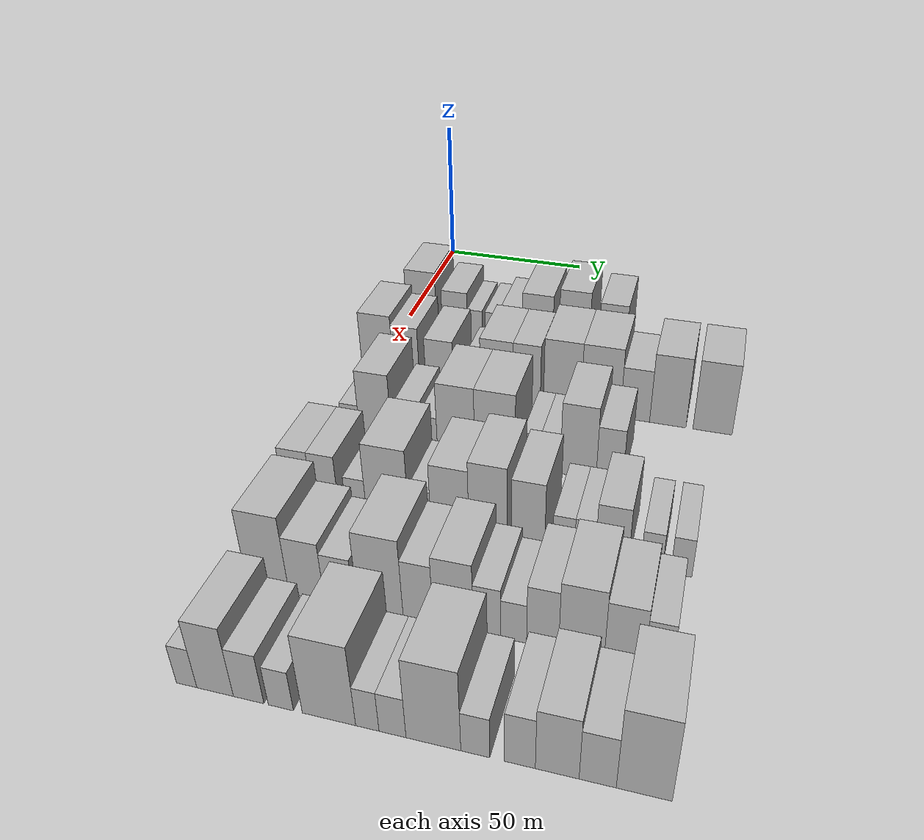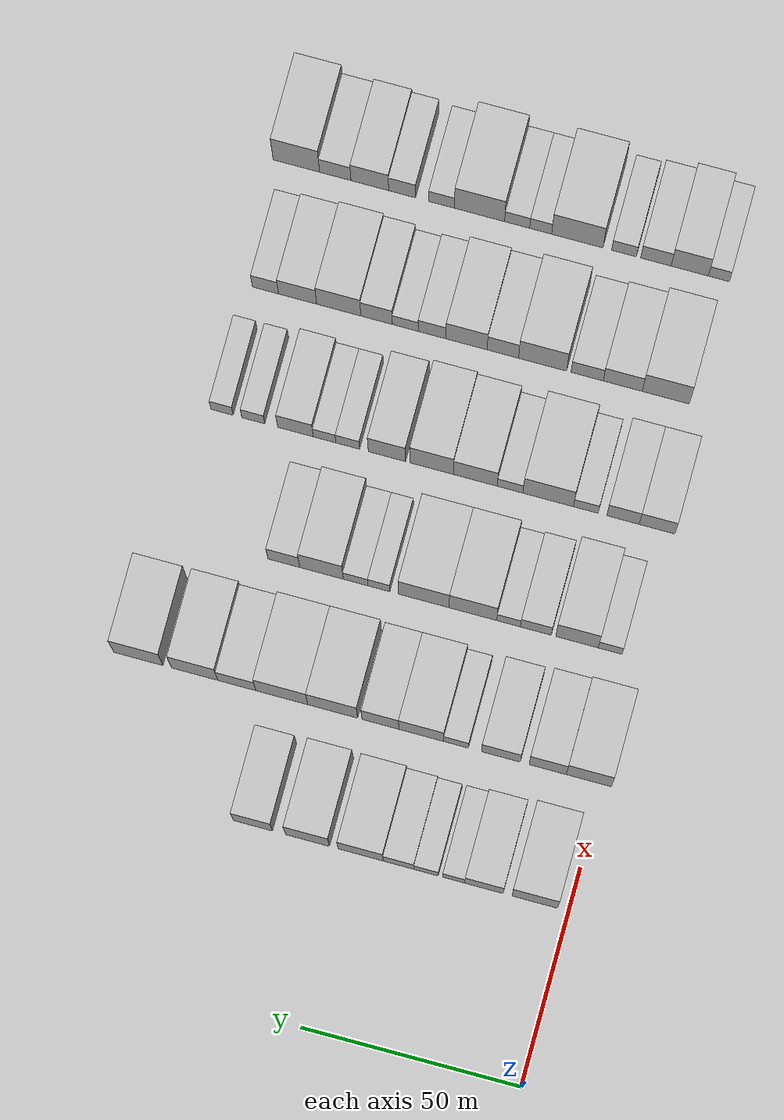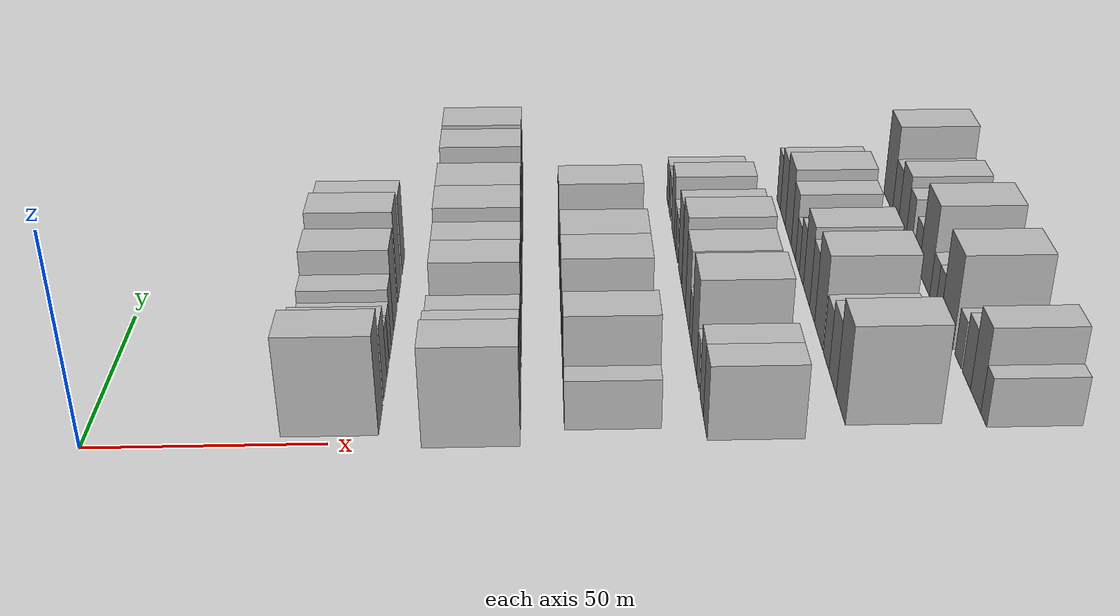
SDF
<sdf version="1.6">
 <world name="default">
  <model name="building_61">
   <static>1</static>
   <pose>50.0000 7.7225 0 0.000000 0.000000 0.000000</pose>
   <link name="link">
    <pose>0 0 12.00 0 0 0</pose>
    <collision name="collision"><geometry><box><size>20.0000 10.3742 24.0000</size></box></geometry></collision>
    <visual name="visual">
     <cast_shadows>0</cast_shadows>
     <geometry><box><size>20.0000 10.3742 24.0000</size></box></geometry>
     <material>
      <script>
       <uri>model://HANNAS_wall/materials/scripts</uri>
       <uri>model://HANNAS_wall/materials/textures</uri>
       <name>vrc/HANNAS_wall</name>
      </script>
     </material>
    </visual>
   </link>
  </model>
  <model name="building_62">
   <static>1</static>
   <pose>50.0000 19.2918 0 0.000000 0.000000 0.000000</pose>
   <link name="link">
    <pose>0 0 9.00 0 0 0</pose>
    <collision name="collision"><geometry><box><size>20.0000 8.7645 18.0000</size></box></geometry></collision>
    <visual name="visual">
     <cast_shadows>0</cast_shadows>
     <geometry><box><size>20.0000 8.7645 18.0000</size></box></geometry>
     <material>
      <script>
       <uri>model://HANNAS_wall/materials/scripts</uri>
       <uri>model://HANNAS_wall/materials/textures</uri>
       <name>vrc/HANNAS_wall</name>
      </script>
     </material>
    </visual>
   </link>
  </model>
  <model name="building_63">
   <static>1</static>
   <pose>50.0000 26.1871 0 0.000000 0.000000 0.000000</pose>
   <link name="link">
    <pose>0 0 6.00 0 0 0</pose>
    <collision name="collision"><geometry><box><size>20.0000 5.0260 12.0000</size></box></geometry></collision>
    <visual name="visual">
     <cast_shadows>0</cast_shadows>
     <geometry><box><size>20.0000 5.0260 12.0000</size></box></geometry>
     <material>
      <script>
       <uri>model://HANNAS_wall/materials/scripts</uri>
       <uri>model://HANNAS_wall/materials/textures</uri>
       <name>vrc/HANNAS_wall</name>
      </script>
     </material>
    </visual>
   </link>
  </model>
  <model name="building_64">
   <static>1</static>
   <pose>50.0000 32.4772 0 0.000000 0.000000 0.000000</pose>
   <link name="link">
    <pose>0 0 6.00 0 0 0</pose>
    <collision name="collision"><geometry><box><size>20.0000 5.5542 12.0000</size></box></geometry></collision>
    <visual name="visual">
     <cast_shadows>0</cast_shadows>
     <geometry><box><size>20.0000 5.5542 12.0000</size></box></geometry>
     <material>
      <script>
       <uri>model://HANNAS_wall/materials/scripts</uri>
       <uri>model://HANNAS_wall/materials/textures</uri>
       <name>vrc/HANNAS_wall</name>
      </script>
     </material>
    </visual>
   </link>
  </model>
  <model name="building_65">
   <static>1</static>
   <pose>50.0000 38.7532 0 0.000000 0.000000 0.000000</pose>
   <link name="link">
    <pose>0 0 7.50 0 0 0</pose>
    <collision name="collision"><geometry><box><size>20.0000 6.9978 15.0000</size></box></geometry></collision>
    <visual name="visual">
     <cast_shadows>0</cast_shadows>
     <geometry><box><size>20.0000 6.9978 15.0000</size></box></geometry>
     <material>
      <script>
       <uri>model://HANNAS_wall/materials/scripts</uri>
       <uri>model://HANNAS_wall/materials/textures</uri>
       <name>vrc/HANNAS_wall</name>
      </script>
     </material>
    </visual>
   </link>
  </model>
  <model name="building_66">
   <static>1</static>
   <pose>50.0000 47.3738 0 0.000000 0.000000 0.000000</pose>
   <link name="link">
    <pose>0 0 10.50 0 0 0</pose>
    <collision name="collision"><geometry><box><size>20.0000 10.2433 21.0000</size></box></geometry></collision>
    <visual name="visual">
     <cast_shadows>0</cast_shadows>
     <geometry><box><size>20.0000 10.2433 21.0000</size></box></geometry>
     <material>
      <script>
       <uri>model://HANNAS_wall/materials/scripts</uri>
       <uri>model://HANNAS_wall/materials/textures</uri>
       <name>vrc/HANNAS_wall</name>
      </script>
     </material>
    </visual>
   </link>
  </model>
  <model name="building_67">
   <static>1</static>
   <pose>50.0000 59.5017 0 0.000000 0.000000 0.000000</pose>
   <link name="link">
    <pose>0 0 12.00 0 0 0</pose>
    <collision name="collision"><geometry><box><size>20.0000 10.0125 24.0000</size></box></geometry></collision>
    <visual name="visual">
     <cast_shadows>0</cast_shadows>
     <geometry><box><size>20.0000 10.0125 24.0000</size></box></geometry>
     <material>
      <script>
       <uri>model://HANNAS_wall/materials/scripts</uri>
       <uri>model://HANNAS_wall/materials/textures</uri>
       <name>vrc/HANNAS_wall</name>
      </script>
     </material>
    </visual>
   </link>
  </model>
  <model name="building_68">
   <static>1</static>
   <pose>50.0000 71.9700 0 0.000000 0.000000 0.000000</pose>
   <link name="link">
    <pose>0 0 10.50 0 0 0</pose>
    <collision name="collision"><geometry><box><size>20.0000 8.9242 21.0000</size></box></geometry></collision>
    <visual name="visual">
     <cast_shadows>0</cast_shadows>
     <geometry><box><size>20.0000 8.9242 21.0000</size></box></geometry>
     <material>
      <script>
       <uri>model://HANNAS_wall/materials/scripts</uri>
       <uri>model://HANNAS_wall/materials/textures</uri>
       <name>vrc/HANNAS_wall</name>
      </script>
     </material>
    </visual>
   </link>
  </model>
  <model name="building_176">
   <static>1</static>
   <pose>79.0000 3.1912 0 0.000000 0.000000 0.000000</pose>
   <link name="link">
    <pose>0 0 12.00 0 0 0</pose>
    <collision name="collision"><geometry><box><size>20.0000 10.2836 24.0000</size></box></geometry></collision>
    <visual name="visual">
     <cast_shadows>0</cast_shadows>
     <geometry><box><size>20.0000 10.2836 24.0000</size></box></geometry>
     <material>
      <script>
       <uri>model://HANNAS_wall/materials/scripts</uri>
       <uri>model://HANNAS_wall/materials/textures</uri>
       <name>vrc/HANNAS_wall</name>
      </script>
     </material>
    </visual>
   </link>
  </model>
  <model name="building_177">
   <static>1</static>
   <pose>79.0000 12.5779 0 0.000000 0.000000 0.000000</pose>
   <link name="link">
    <pose>0 0 10.50 0 0 0</pose>
    <collision name="collision"><geometry><box><size>20.0000 8.4897 21.0000</size></box></geometry></collision>
    <visual name="visual">
     <cast_shadows>0</cast_shadows>
     <geometry><box><size>20.0000 8.4897 21.0000</size></box></geometry>
     <material>
      <script>
       <uri>model://HANNAS_wall/materials/scripts</uri>
       <uri>model://HANNAS_wall/materials/textures</uri>
       <name>vrc/HANNAS_wall</name>
      </script>
     </material>
    </visual>
   </link>
  </model>
  <model name="building_178">
   <static>1</static>
   <pose>79.0000 23.2499 0 0.000000 0.000000 0.000000</pose>
   <link name="link">
    <pose>0 0 9.00 0 0 0</pose>
    <collision name="collision"><geometry><box><size>20.0000 8.8544 18.0000</size></box></geometry></collision>
    <visual name="visual">
     <cast_shadows>0</cast_shadows>
     <geometry><box><size>20.0000 8.8544 18.0000</size></box></geometry>
     <material>
      <script>
       <uri>model://HANNAS_wall/materials/scripts</uri>
       <uri>model://HANNAS_wall/materials/textures</uri>
       <name>vrc/HANNAS_wall</name>
      </script>
     </material>
    </visual>
   </link>
  </model>
  <model name="building_179">
   <static>1</static>
   <pose>79.0000 33.5027 0 0.000000 0.000000 0.000000</pose>
   <link name="link">
    <pose>0 0 6.00 0 0 0</pose>
    <collision name="collision"><geometry><box><size>20.0000 5.6511 12.0000</size></box></geometry></collision>
    <visual name="visual">
     <cast_shadows>0</cast_shadows>
     <geometry><box><size>20.0000 5.6511 12.0000</size></box></geometry>
     <material>
      <script>
       <uri>model://HANNAS_wall/materials/scripts</uri>
       <uri>model://HANNAS_wall/materials/textures</uri>
       <name>vrc/HANNAS_wall</name>
      </script>
     </material>
    </visual>
   </link>
  </model>
  <model name="building_180">
   <static>1</static>
   <pose>79.0000 41.4485 0 0.000000 0.000000 0.000000</pose>
   <link name="link">
    <pose>0 0 10.50 0 0 0</pose>
    <collision name="collision"><geometry><box><size>20.0000 10.2404 21.0000</size></box></geometry></collision>
    <visual name="visual">
     <cast_shadows>0</cast_shadows>
     <geometry><box><size>20.0000 10.2404 21.0000</size></box></geometry>
     <material>
      <script>
       <uri>model://HANNAS_wall/materials/scripts</uri>
       <uri>model://HANNAS_wall/materials/textures</uri>
       <name>vrc/HANNAS_wall</name>
      </script>
     </material>
    </visual>
   </link>
  </model>
  <model name="building_181">
   <static>1</static>
   <pose>79.0000 50.7851 0 0.000000 0.000000 0.000000</pose>
   <link name="link">
    <pose>0 0 10.50 0 0 0</pose>
    <collision name="collision"><geometry><box><size>20.0000 8.4329 21.0000</size></box></geometry></collision>
    <visual name="visual">
     <cast_shadows>0</cast_shadows>
     <geometry><box><size>20.0000 8.4329 21.0000</size></box></geometry>
     <material>
      <script>
       <uri>model://HANNAS_wall/materials/scripts</uri>
       <uri>model://HANNAS_wall/materials/textures</uri>
       <name>vrc/HANNAS_wall</name>
      </script>
     </material>
    </visual>
   </link>
  </model>
  <model name="building_182">
   <static>1</static>
   <pose>79.0000 61.7066 0 0.000000 0.000000 0.000000</pose>
   <link name="link">
    <pose>0 0 12.00 0 0 0</pose>
    <collision name="collision"><geometry><box><size>20.0000 11.4099 24.0000</size></box></geometry></collision>
    <visual name="visual">
     <cast_shadows>0</cast_shadows>
     <geometry><box><size>20.0000 11.4099 24.0000</size></box></geometry>
     <material>
      <script>
       <uri>model://HANNAS_wall/materials/scripts</uri>
       <uri>model://HANNAS_wall/materials/textures</uri>
       <name>vrc/HANNAS_wall</name>
      </script>
     </material>
    </visual>
   </link>
  </model>
  <model name="building_183">
   <static>1</static>
   <pose>79.0000 73.3550 0 0.000000 0.000000 0.000000</pose>
   <link name="link">
    <pose>0 0 12.00 0 0 0</pose>
    <collision name="collision"><geometry><box><size>20.0000 11.8870 24.0000</size></box></geometry></collision>
    <visual name="visual">
     <cast_shadows>0</cast_shadows>
     <geometry><box><size>20.0000 11.8870 24.0000</size></box></geometry>
     <material>
      <script>
       <uri>model://HANNAS_wall/materials/scripts</uri>
       <uri>model://HANNAS_wall/materials/textures</uri>
       <name>vrc/HANNAS_wall</name>
      </script>
     </material>
    </visual>
   </link>
  </model>
  <model name="building_184">
   <static>1</static>
   <pose>79.0000 83.6400 0 0.000000 0.000000 0.000000</pose>
   <link name="link">
    <pose>0 0 9.00 0 0 0</pose>
    <collision name="collision"><geometry><box><size>20.0000 8.6829 18.0000</size></box></geometry></collision>
    <visual name="visual">
     <cast_shadows>0</cast_shadows>
     <geometry><box><size>20.0000 8.6829 18.0000</size></box></geometry>
     <material>
      <script>
       <uri>model://HANNAS_wall/materials/scripts</uri>
       <uri>model://HANNAS_wall/materials/textures</uri>
       <name>vrc/HANNAS_wall</name>
      </script>
     </material>
    </visual>
   </link>
  </model>
  <model name="building_185">
   <static>1</static>
   <pose>79.0000 93.2934 0 0.000000 0.000000 0.000000</pose>
   <link name="link">
    <pose>0 0 12.00 0 0 0</pose>
    <collision name="collision"><geometry><box><size>20.0000 10.6240 24.0000</size></box></geometry></collision>
    <visual name="visual">
     <cast_shadows>0</cast_shadows>
     <geometry><box><size>20.0000 10.6240 24.0000</size></box></geometry>
     <material>
      <script>
       <uri>model://HANNAS_wall/materials/scripts</uri>
       <uri>model://HANNAS_wall/materials/textures</uri>
       <name>vrc/HANNAS_wall</name>
      </script>
     </material>
    </visual>
   </link>
  </model>
  <model name="building_186">
   <static>1</static>
   <pose>79.0000 106.2241 0 0.000000 0.000000 0.000000</pose>
   <link name="link">
    <pose>0 0 12.00 0 0 0</pose>
    <collision name="collision"><geometry><box><size>20.0000 11.2372 24.0000</size></box></geometry></collision>
    <visual name="visual">
     <cast_shadows>0</cast_shadows>
     <geometry><box><size>20.0000 11.2372 24.0000</size></box></geometry>
     <material>
      <script>
       <uri>model://HANNAS_wall/materials/scripts</uri>
       <uri>model://HANNAS_wall/materials/textures</uri>
       <name>vrc/HANNAS_wall</name>
      </script>
     </material>
    </visual>
   </link>
  </model>
  <model name="building_277">
   <static>1</static>
   <pose>108.0000 6.0365 0 0.000000 0.000000 0.000000</pose>
   <link name="link">
    <pose>0 0 6.00 0 0 0</pose>
    <collision name="collision"><geometry><box><size>20.0000 5.4585 12.0000</size></box></geometry></collision>
    <visual name="visual">
     <cast_shadows>0</cast_shadows>
     <geometry><box><size>20.0000 5.4585 12.0000</size></box></geometry>
     <material>
      <script>
       <uri>model://HANNAS_wall/materials/scripts</uri>
       <uri>model://HANNAS_wall/materials/textures</uri>
       <name>vrc/HANNAS_wall</name>
      </script>
     </material>
    </visual>
   </link>
  </model>
  <model name="building_278">
   <static>1</static>
   <pose>108.0000 13.6426 0 0.000000 0.000000 0.000000</pose>
   <link name="link">
    <pose>0 0 12.00 0 0 0</pose>
    <collision name="collision"><geometry><box><size>20.0000 9.7537 24.0000</size></box></geometry></collision>
    <visual name="visual">
     <cast_shadows>0</cast_shadows>
     <geometry><box><size>20.0000 9.7537 24.0000</size></box></geometry>
     <material>
      <script>
       <uri>model://HANNAS_wall/materials/scripts</uri>
       <uri>model://HANNAS_wall/materials/textures</uri>
       <name>vrc/HANNAS_wall</name>
      </script>
     </material>
    </visual>
   </link>
  </model>
  <model name="building_279">
   <static>1</static>
   <pose>108.0000 23.0705 0 0.000000 0.000000 0.000000</pose>
   <link name="link">
    <pose>0 0 7.50 0 0 0</pose>
    <collision name="collision"><geometry><box><size>20.0000 7.1021 15.0000</size></box></geometry></collision>
    <visual name="visual">
     <cast_shadows>0</cast_shadows>
     <geometry><box><size>20.0000 7.1021 15.0000</size></box></geometry>
     <material>
      <script>
       <uri>model://HANNAS_wall/materials/scripts</uri>
       <uri>model://HANNAS_wall/materials/textures</uri>
       <name>vrc/HANNAS_wall</name>
      </script>
     </material>
    </visual>
   </link>
  </model>
  <model name="building_280">
   <static>1</static>
   <pose>108.0000 29.3272 0 0.000000 0.000000 0.000000</pose>
   <link name="link">
    <pose>0 0 6.00 0 0 0</pose>
    <collision name="collision"><geometry><box><size>20.0000 5.4114 12.0000</size></box></geometry></collision>
    <visual name="visual">
     <cast_shadows>0</cast_shadows>
     <geometry><box><size>20.0000 5.4114 12.0000</size></box></geometry>
     <material>
      <script>
       <uri>model://HANNAS_wall/materials/scripts</uri>
       <uri>model://HANNAS_wall/materials/textures</uri>
       <name>vrc/HANNAS_wall</name>
      </script>
     </material>
    </visual>
   </link>
  </model>
  <model name="building_281">
   <static>1</static>
   <pose>108.0000 37.4851 0 0.000000 0.000000 0.000000</pose>
   <link name="link">
    <pose>0 0 12.00 0 0 0</pose>
    <collision name="collision"><geometry><box><size>20.0000 10.9044 24.0000</size></box></geometry></collision>
    <visual name="visual">
     <cast_shadows>0</cast_shadows>
     <geometry><box><size>20.0000 10.9044 24.0000</size></box></geometry>
     <material>
      <script>
       <uri>model://HANNAS_wall/materials/scripts</uri>
       <uri>model://HANNAS_wall/materials/textures</uri>
       <name>vrc/HANNAS_wall</name>
      </script>
     </material>
    </visual>
   </link>
  </model>
  <model name="building_282">
   <static>1</static>
   <pose>108.0000 48.7407 0 0.000000 0.000000 0.000000</pose>
   <link name="link">
    <pose>0 0 12.00 0 0 0</pose>
    <collision name="collision"><geometry><box><size>20.0000 11.6067 24.0000</size></box></geometry></collision>
    <visual name="visual">
     <cast_shadows>0</cast_shadows>
     <geometry><box><size>20.0000 11.6067 24.0000</size></box></geometry>
     <material>
      <script>
       <uri>model://HANNAS_wall/materials/scripts</uri>
       <uri>model://HANNAS_wall/materials/textures</uri>
       <name>vrc/HANNAS_wall</name>
      </script>
     </material>
    </visual>
   </link>
  </model>
  <model name="building_283">
   <static>1</static>
   <pose>108.0000 59.0471 0 0.000000 0.000000 0.000000</pose>
   <link name="link">
    <pose>0 0 6.00 0 0 0</pose>
    <collision name="collision"><geometry><box><size>20.0000 5.0060 12.0000</size></box></geometry></collision>
    <visual name="visual">
     <cast_shadows>0</cast_shadows>
     <geometry><box><size>20.0000 5.0060 12.0000</size></box></geometry>
     <material>
      <script>
       <uri>model://HANNAS_wall/materials/scripts</uri>
       <uri>model://HANNAS_wall/materials/textures</uri>
       <name>vrc/HANNAS_wall</name>
      </script>
     </material>
    </visual>
   </link>
  </model>
  <model name="building_284">
   <static>1</static>
   <pose>108.0000 64.3811 0 0.000000 0.000000 0.000000</pose>
   <link name="link">
    <pose>0 0 6.00 0 0 0</pose>
    <collision name="collision"><geometry><box><size>20.0000 5.6620 12.0000</size></box></geometry></collision>
    <visual name="visual">
     <cast_shadows>0</cast_shadows>
     <geometry><box><size>20.0000 5.6620 12.0000</size></box></geometry>
     <material>
      <script>
       <uri>model://HANNAS_wall/materials/scripts</uri>
       <uri>model://HANNAS_wall/materials/textures</uri>
       <name>vrc/HANNAS_wall</name>
      </script>
     </material>
    </visual>
   </link>
  </model>
  <model name="building_285">
   <static>1</static>
   <pose>108.0000 72.1862 0 0.000000 0.000000 0.000000</pose>
   <link name="link">
    <pose>0 0 12.00 0 0 0</pose>
    <collision name="collision"><geometry><box><size>20.0000 9.9481 24.0000</size></box></geometry></collision>
    <visual name="visual">
     <cast_shadows>0</cast_shadows>
     <geometry><box><size>20.0000 9.9481 24.0000</size></box></geometry>
     <material>
      <script>
       <uri>model://HANNAS_wall/materials/scripts</uri>
       <uri>model://HANNAS_wall/materials/textures</uri>
       <name>vrc/HANNAS_wall</name>
      </script>
     </material>
    </visual>
   </link>
  </model>
  <model name="building_286">
   <static>1</static>
   <pose>108.0000 80.8354 0 0.000000 0.000000 0.000000</pose>
   <link name="link">
    <pose>0 0 9.00 0 0 0</pose>
    <collision name="collision"><geometry><box><size>20.0000 7.3503 18.0000</size></box></geometry></collision>
    <visual name="visual">
     <cast_shadows>0</cast_shadows>
     <geometry><box><size>20.0000 7.3503 18.0000</size></box></geometry>
     <material>
      <script>
       <uri>model://HANNAS_wall/materials/scripts</uri>
       <uri>model://HANNAS_wall/materials/textures</uri>
       <name>vrc/HANNAS_wall</name>
      </script>
     </material>
    </visual>
   </link>
  </model>
  <model name="building_389">
   <static>1</static>
   <pose>137.0000 3.0432 0 0.000000 0.000000 0.000000</pose>
   <link name="link">
    <pose>0 0 9.00 0 0 0</pose>
    <collision name="collision"><geometry><box><size>20.0000 8.1958 18.0000</size></box></geometry></collision>
    <visual name="visual">
     <cast_shadows>0</cast_shadows>
     <geometry><box><size>20.0000 8.1958 18.0000</size></box></geometry>
     <material>
      <script>
       <uri>model://HANNAS_wall/materials/scripts</uri>
       <uri>model://HANNAS_wall/materials/textures</uri>
       <name>vrc/HANNAS_wall</name>
      </script>
     </material>
    </visual>
   </link>
  </model>
  <model name="building_390">
   <static>1</static>
   <pose>137.0000 10.8566 0 0.000000 0.000000 0.000000</pose>
   <link name="link">
    <pose>0 0 9.00 0 0 0</pose>
    <collision name="collision"><geometry><box><size>20.0000 7.4310 18.0000</size></box></geometry></collision>
    <visual name="visual">
     <cast_shadows>0</cast_shadows>
     <geometry><box><size>20.0000 7.4310 18.0000</size></box></geometry>
     <material>
      <script>
       <uri>model://HANNAS_wall/materials/scripts</uri>
       <uri>model://HANNAS_wall/materials/textures</uri>
       <name>vrc/HANNAS_wall</name>
      </script>
     </material>
    </visual>
   </link>
  </model>
  <model name="building_391">
   <static>1</static>
   <pose>137.0000 19.4101 0 0.000000 0.000000 0.000000</pose>
   <link name="link">
    <pose>0 0 6.00 0 0 0</pose>
    <collision name="collision"><geometry><box><size>20.0000 5.6759 12.0000</size></box></geometry></collision>
    <visual name="visual">
     <cast_shadows>0</cast_shadows>
     <geometry><box><size>20.0000 5.6759 12.0000</size></box></geometry>
     <material>
      <script>
       <uri>model://HANNAS_wall/materials/scripts</uri>
       <uri>model://HANNAS_wall/materials/textures</uri>
       <name>vrc/HANNAS_wall</name>
      </script>
     </material>
    </visual>
   </link>
  </model>
  <model name="building_392">
   <static>1</static>
   <pose>137.0000 28.0504 0 0.000000 0.000000 0.000000</pose>
   <link name="link">
    <pose>0 0 12.00 0 0 0</pose>
    <collision name="collision"><geometry><box><size>20.0000 11.6046 24.0000</size></box></geometry></collision>
    <visual name="visual">
     <cast_shadows>0</cast_shadows>
     <geometry><box><size>20.0000 11.6046 24.0000</size></box></geometry>
     <material>
      <script>
       <uri>model://HANNAS_wall/materials/scripts</uri>
       <uri>model://HANNAS_wall/materials/textures</uri>
       <name>vrc/HANNAS_wall</name>
      </script>
     </material>
    </visual>
   </link>
  </model>
  <model name="building_393">
   <static>1</static>
   <pose>137.0000 36.8027 0 0.000000 0.000000 0.000000</pose>
   <link name="link">
    <pose>0 0 6.00 0 0 0</pose>
    <collision name="collision"><geometry><box><size>20.0000 5.9000 12.0000</size></box></geometry></collision>
    <visual name="visual">
     <cast_shadows>0</cast_shadows>
     <geometry><box><size>20.0000 5.9000 12.0000</size></box></geometry>
     <material>
      <script>
       <uri>model://HANNAS_wall/materials/scripts</uri>
       <uri>model://HANNAS_wall/materials/textures</uri>
       <name>vrc/HANNAS_wall</name>
      </script>
     </material>
    </visual>
   </link>
  </model>
  <model name="building_394">
   <static>1</static>
   <pose>137.0000 44.7918 0 0.000000 0.000000 0.000000</pose>
   <link name="link">
    <pose>0 0 10.50 0 0 0</pose>
    <collision name="collision"><geometry><box><size>20.0000 10.0782 21.0000</size></box></geometry></collision>
    <visual name="visual">
     <cast_shadows>0</cast_shadows>
     <geometry><box><size>20.0000 10.0782 21.0000</size></box></geometry>
     <material>
      <script>
       <uri>model://HANNAS_wall/materials/scripts</uri>
       <uri>model://HANNAS_wall/materials/textures</uri>
       <name>vrc/HANNAS_wall</name>
      </script>
     </material>
    </visual>
   </link>
  </model>
  <model name="building_395">
   <static>1</static>
   <pose>137.0000 54.8227 0 0.000000 0.000000 0.000000</pose>
   <link name="link">
    <pose>0 0 12.00 0 0 0</pose>
    <collision name="collision"><geometry><box><size>20.0000 9.9836 24.0000</size></box></geometry></collision>
    <visual name="visual">
     <cast_shadows>0</cast_shadows>
     <geometry><box><size>20.0000 9.9836 24.0000</size></box></geometry>
     <material>
      <script>
       <uri>model://HANNAS_wall/materials/scripts</uri>
       <uri>model://HANNAS_wall/materials/textures</uri>
       <name>vrc/HANNAS_wall</name>
      </script>
     </material>
    </visual>
   </link>
  </model>
  <model name="building_396">
   <static>1</static>
   <pose>137.0000 65.1035 0 0.000000 0.000000 0.000000</pose>
   <link name="link">
    <pose>0 0 10.50 0 0 0</pose>
    <collision name="collision"><geometry><box><size>20.0000 8.5780 21.0000</size></box></geometry></collision>
    <visual name="visual">
     <cast_shadows>0</cast_shadows>
     <geometry><box><size>20.0000 8.5780 21.0000</size></box></geometry>
     <material>
      <script>
       <uri>model://HANNAS_wall/materials/scripts</uri>
       <uri>model://HANNAS_wall/materials/textures</uri>
       <name>vrc/HANNAS_wall</name>
      </script>
     </material>
    </visual>
   </link>
  </model>
  <model name="building_397">
   <static>1</static>
   <pose>137.0000 74.1218 0 0.000000 0.000000 0.000000</pose>
   <link name="link">
    <pose>0 0 6.00 0 0 0</pose>
    <collision name="collision"><geometry><box><size>20.0000 5.4584 12.0000</size></box></geometry></collision>
    <visual name="visual">
     <cast_shadows>0</cast_shadows>
     <geometry><box><size>20.0000 5.4584 12.0000</size></box></geometry>
     <material>
      <script>
       <uri>model://HANNAS_wall/materials/scripts</uri>
       <uri>model://HANNAS_wall/materials/textures</uri>
       <name>vrc/HANNAS_wall</name>
      </script>
     </material>
    </visual>
   </link>
  </model>
  <model name="building_398">
   <static>1</static>
   <pose>137.0000 79.4558 0 0.000000 0.000000 0.000000</pose>
   <link name="link">
    <pose>0 0 6.00 0 0 0</pose>
    <collision name="collision"><geometry><box><size>20.0000 5.2097 12.0000</size></box></geometry></collision>
    <visual name="visual">
     <cast_shadows>0</cast_shadows>
     <geometry><box><size>20.0000 5.2097 12.0000</size></box></geometry>
     <material>
      <script>
       <uri>model://HANNAS_wall/materials/scripts</uri>
       <uri>model://HANNAS_wall/materials/textures</uri>
       <name>vrc/HANNAS_wall</name>
      </script>
     </material>
    </visual>
   </link>
  </model>
  <model name="building_399">
   <static>1</static>
   <pose>137.0000 86.1461 0 0.000000 0.000000 0.000000</pose>
   <link name="link">
    <pose>0 0 9.00 0 0 0</pose>
    <collision name="collision"><geometry><box><size>20.0000 8.1707 18.0000</size></box></geometry></collision>
    <visual name="visual">
     <cast_shadows>0</cast_shadows>
     <geometry><box><size>20.0000 8.1707 18.0000</size></box></geometry>
     <material>
      <script>
       <uri>model://HANNAS_wall/materials/scripts</uri>
       <uri>model://HANNAS_wall/materials/textures</uri>
       <name>vrc/HANNAS_wall</name>
      </script>
     </material>
    </visual>
   </link>
  </model>
  <model name="building_400">
   <static>1</static>
   <pose>137.0000 95.8704 0 0.000000 0.000000 0.000000</pose>
   <link name="link">
    <pose>0 0 6.00 0 0 0</pose>
    <collision name="collision"><geometry><box><size>20.0000 5.2779 12.0000</size></box></geometry></collision>
    <visual name="visual">
     <cast_shadows>0</cast_shadows>
     <geometry><box><size>20.0000 5.2779 12.0000</size></box></geometry>
     <material>
      <script>
       <uri>model://HANNAS_wall/materials/scripts</uri>
       <uri>model://HANNAS_wall/materials/textures</uri>
       <name>vrc/HANNAS_wall</name>
      </script>
     </material>
    </visual>
   </link>
  </model>
  <model name="building_401">
   <static>1</static>
   <pose>137.0000 103.0631 0 0.000000 0.000000 0.000000</pose>
   <link name="link">
    <pose>0 0 6.00 0 0 0</pose>
    <collision name="collision"><geometry><box><size>20.0000 5.1076 12.0000</size></box></geometry></collision>
    <visual name="visual">
     <cast_shadows>0</cast_shadows>
     <geometry><box><size>20.0000 5.1076 12.0000</size></box></geometry>
     <material>
      <script>
       <uri>model://HANNAS_wall/materials/scripts</uri>
       <uri>model://HANNAS_wall/materials/textures</uri>
       <name>vrc/HANNAS_wall</name>
      </script>
     </material>
    </visual>
   </link>
  </model>
  <model name="building_501">
   <static>1</static>
   <pose>166.0000 8.7731 0 0.000000 0.000000 0.000000</pose>
   <link name="link">
    <pose>0 0 12.00 0 0 0</pose>
    <collision name="collision"><geometry><box><size>20.0000 10.8334 24.0000</size></box></geometry></collision>
    <visual name="visual">
     <cast_shadows>0</cast_shadows>
     <geometry><box><size>20.0000 10.8334 24.0000</size></box></geometry>
     <material>
      <script>
       <uri>model://HANNAS_wall/materials/scripts</uri>
       <uri>model://HANNAS_wall/materials/textures</uri>
       <name>vrc/HANNAS_wall</name>
      </script>
     </material>
    </visual>
   </link>
  </model>
  <model name="building_502">
   <static>1</static>
   <pose>166.0000 18.6742 0 0.000000 0.000000 0.000000</pose>
   <link name="link">
    <pose>0 0 9.00 0 0 0</pose>
    <collision name="collision"><geometry><box><size>20.0000 8.9687 18.0000</size></box></geometry></collision>
    <visual name="visual">
     <cast_shadows>0</cast_shadows>
     <geometry><box><size>20.0000 8.9687 18.0000</size></box></geometry>
     <material>
      <script>
       <uri>model://HANNAS_wall/materials/scripts</uri>
       <uri>model://HANNAS_wall/materials/textures</uri>
       <name>vrc/HANNAS_wall</name>
      </script>
     </material>
    </visual>
   </link>
  </model>
  <model name="building_503">
   <static>1</static>
   <pose>166.0000 26.8800 0 0.000000 0.000000 0.000000</pose>
   <link name="link">
    <pose>0 0 7.50 0 0 0</pose>
    <collision name="collision"><geometry><box><size>20.0000 7.4429 15.0000</size></box></geometry></collision>
    <visual name="visual">
     <cast_shadows>0</cast_shadows>
     <geometry><box><size>20.0000 7.4429 15.0000</size></box></geometry>
     <material>
      <script>
       <uri>model://HANNAS_wall/materials/scripts</uri>
       <uri>model://HANNAS_wall/materials/textures</uri>
       <name>vrc/HANNAS_wall</name>
      </script>
     </material>
    </visual>
   </link>
  </model>
  <model name="building_504">
   <static>1</static>
   <pose>166.0000 37.1345 0 0.000000 0.000000 0.000000</pose>
   <link name="link">
    <pose>0 0 12.00 0 0 0</pose>
    <collision name="collision"><geometry><box><size>20.0000 11.0662 24.0000</size></box></geometry></collision>
    <visual name="visual">
     <cast_shadows>0</cast_shadows>
     <geometry><box><size>20.0000 11.0662 24.0000</size></box></geometry>
     <material>
      <script>
       <uri>model://HANNAS_wall/materials/scripts</uri>
       <uri>model://HANNAS_wall/materials/textures</uri>
       <name>vrc/HANNAS_wall</name>
      </script>
     </material>
    </visual>
   </link>
  </model>
  <model name="building_505">
   <static>1</static>
   <pose>166.0000 46.2848 0 0.000000 0.000000 0.000000</pose>
   <link name="link">
    <pose>0 0 9.00 0 0 0</pose>
    <collision name="collision"><geometry><box><size>20.0000 7.2343 18.0000</size></box></geometry></collision>
    <visual name="visual">
     <cast_shadows>0</cast_shadows>
     <geometry><box><size>20.0000 7.2343 18.0000</size></box></geometry>
     <material>
      <script>
       <uri>model://HANNAS_wall/materials/scripts</uri>
       <uri>model://HANNAS_wall/materials/textures</uri>
       <name>vrc/HANNAS_wall</name>
      </script>
     </material>
    </visual>
   </link>
  </model>
  <model name="building_506">
   <static>1</static>
   <pose>166.0000 54.6414 0 0.000000 0.000000 0.000000</pose>
   <link name="link">
    <pose>0 0 10.50 0 0 0</pose>
    <collision name="collision"><geometry><box><size>20.0000 9.4788 21.0000</size></box></geometry></collision>
    <visual name="visual">
     <cast_shadows>0</cast_shadows>
     <geometry><box><size>20.0000 9.4788 21.0000</size></box></geometry>
     <material>
      <script>
       <uri>model://HANNAS_wall/materials/scripts</uri>
       <uri>model://HANNAS_wall/materials/textures</uri>
       <name>vrc/HANNAS_wall</name>
      </script>
     </material>
    </visual>
   </link>
  </model>
  <model name="building_507">
   <static>1</static>
   <pose>166.0000 62.5815 0 0.000000 0.000000 0.000000</pose>
   <link name="link">
    <pose>0 0 7.50 0 0 0</pose>
    <collision name="collision"><geometry><box><size>20.0000 6.4015 15.0000</size></box></geometry></collision>
    <visual name="visual">
     <cast_shadows>0</cast_shadows>
     <geometry><box><size>20.0000 6.4015 15.0000</size></box></geometry>
     <material>
      <script>
       <uri>model://HANNAS_wall/materials/scripts</uri>
       <uri>model://HANNAS_wall/materials/textures</uri>
       <name>vrc/HANNAS_wall</name>
      </script>
     </material>
    </visual>
   </link>
  </model>
  <model name="building_508">
   <static>1</static>
   <pose>166.0000 68.7698 0 0.000000 0.000000 0.000000</pose>
   <link name="link">
    <pose>0 0 6.00 0 0 0</pose>
    <collision name="collision"><geometry><box><size>20.0000 5.9752 12.0000</size></box></geometry></collision>
    <visual name="visual">
     <cast_shadows>0</cast_shadows>
     <geometry><box><size>20.0000 5.9752 12.0000</size></box></geometry>
     <material>
      <script>
       <uri>model://HANNAS_wall/materials/scripts</uri>
       <uri>model://HANNAS_wall/materials/textures</uri>
       <name>vrc/HANNAS_wall</name>
      </script>
     </material>
    </visual>
   </link>
  </model>
  <model name="building_509">
   <static>1</static>
   <pose>166.0000 75.3973 0 0.000000 0.000000 0.000000</pose>
   <link name="link">
    <pose>0 0 9.00 0 0 0</pose>
    <collision name="collision"><geometry><box><size>20.0000 7.2798 18.0000</size></box></geometry></collision>
    <visual name="visual">
     <cast_shadows>0</cast_shadows>
     <geometry><box><size>20.0000 7.2798 18.0000</size></box></geometry>
     <material>
      <script>
       <uri>model://HANNAS_wall/materials/scripts</uri>
       <uri>model://HANNAS_wall/materials/textures</uri>
       <name>vrc/HANNAS_wall</name>
      </script>
     </material>
    </visual>
   </link>
  </model>
  <model name="building_510">
   <static>1</static>
   <pose>166.0000 84.1315 0 0.000000 0.000000 0.000000</pose>
   <link name="link">
    <pose>0 0 10.50 0 0 0</pose>
    <collision name="collision"><geometry><box><size>20.0000 10.1885 21.0000</size></box></geometry></collision>
    <visual name="visual">
     <cast_shadows>0</cast_shadows>
     <geometry><box><size>20.0000 10.1885 21.0000</size></box></geometry>
     <material>
      <script>
       <uri>model://HANNAS_wall/materials/scripts</uri>
       <uri>model://HANNAS_wall/materials/textures</uri>
       <name>vrc/HANNAS_wall</name>
      </script>
     </material>
    </visual>
   </link>
  </model>
  <model name="building_511">
   <static>1</static>
   <pose>166.0000 93.6317 0 0.000000 0.000000 0.000000</pose>
   <link name="link">
    <pose>0 0 9.00 0 0 0</pose>
    <collision name="collision"><geometry><box><size>20.0000 8.8120 18.0000</size></box></geometry></collision>
    <visual name="visual">
     <cast_shadows>0</cast_shadows>
     <geometry><box><size>20.0000 8.8120 18.0000</size></box></geometry>
     <material>
      <script>
       <uri>model://HANNAS_wall/materials/scripts</uri>
       <uri>model://HANNAS_wall/materials/textures</uri>
       <name>vrc/HANNAS_wall</name>
      </script>
     </material>
    </visual>
   </link>
  </model>
  <model name="building_512">
   <static>1</static>
   <pose>166.0000 101.0497 0 0.000000 0.000000 0.000000</pose>
   <link name="link">
    <pose>0 0 7.50 0 0 0</pose>
    <collision name="collision"><geometry><box><size>20.0000 6.0241 15.0000</size></box></geometry></collision>
    <visual name="visual">
     <cast_shadows>0</cast_shadows>
     <geometry><box><size>20.0000 6.0241 15.0000</size></box></geometry>
     <material>
      <script>
       <uri>model://HANNAS_wall/materials/scripts</uri>
       <uri>model://HANNAS_wall/materials/textures</uri>
       <name>vrc/HANNAS_wall</name>
      </script>
     </material>
    </visual>
   </link>
  </model>
  <model name="building_618">
   <static>1</static>
   <pose>195.0000 4.2276 0 0.000000 0.000000 0.000000</pose>
   <link name="link">
    <pose>0 0 6.00 0 0 0</pose>
    <collision name="collision"><geometry><box><size>20.0000 4.8623 12.0000</size></box></geometry></collision>
    <visual name="visual">
     <cast_shadows>0</cast_shadows>
     <geometry><box><size>20.0000 4.8623 12.0000</size></box></geometry>
     <material>
      <script>
       <uri>model://HANNAS_wall/materials/scripts</uri>
       <uri>model://HANNAS_wall/materials/textures</uri>
       <name>vrc/HANNAS_wall</name>
      </script>
     </material>
    </visual>
   </link>
  </model>
  <model name="building_619">
   <static>1</static>
   <pose>195.0000 10.9499 0 0.000000 0.000000 0.000000</pose>
   <link name="link">
    <pose>0 0 10.50 0 0 0</pose>
    <collision name="collision"><geometry><box><size>20.0000 8.5823 21.0000</size></box></geometry></collision>
    <visual name="visual">
     <cast_shadows>0</cast_shadows>
     <geometry><box><size>20.0000 8.5823 21.0000</size></box></geometry>
     <material>
      <script>
       <uri>model://HANNAS_wall/materials/scripts</uri>
       <uri>model://HANNAS_wall/materials/textures</uri>
       <name>vrc/HANNAS_wall</name>
      </script>
     </material>
    </visual>
   </link>
  </model>
  <model name="building_620">
   <static>1</static>
   <pose>195.0000 18.7560 0 0.000000 0.000000 0.000000</pose>
   <link name="link">
    <pose>0 0 7.50 0 0 0</pose>
    <collision name="collision"><geometry><box><size>20.0000 7.0299 15.0000</size></box></geometry></collision>
    <visual name="visual">
     <cast_shadows>0</cast_shadows>
     <geometry><box><size>20.0000 7.0299 15.0000</size></box></geometry>
     <material>
      <script>
       <uri>model://HANNAS_wall/materials/scripts</uri>
       <uri>model://HANNAS_wall/materials/textures</uri>
       <name>vrc/HANNAS_wall</name>
      </script>
     </material>
    </visual>
   </link>
  </model>
  <model name="building_621">
   <static>1</static>
   <pose>195.0000 26.1231 0 0.000000 0.000000 0.000000</pose>
   <link name="link">
    <pose>0 0 6.00 0 0 0</pose>
    <collision name="collision"><geometry><box><size>20.0000 5.7044 12.0000</size></box></geometry></collision>
    <visual name="visual">
     <cast_shadows>0</cast_shadows>
     <geometry><box><size>20.0000 5.7044 12.0000</size></box></geometry>
     <material>
      <script>
       <uri>model://HANNAS_wall/materials/scripts</uri>
       <uri>model://HANNAS_wall/materials/textures</uri>
       <name>vrc/HANNAS_wall</name>
      </script>
     </material>
    </visual>
   </link>
  </model>
  <model name="building_622">
   <static>1</static>
   <pose>195.0000 36.9027 0 0.000000 0.000000 0.000000</pose>
   <link name="link">
    <pose>0 0 12.00 0 0 0</pose>
    <collision name="collision"><geometry><box><size>20.0000 11.8549 24.0000</size></box></geometry></collision>
    <visual name="visual">
     <cast_shadows>0</cast_shadows>
     <geometry><box><size>20.0000 11.8549 24.0000</size></box></geometry>
     <material>
      <script>
       <uri>model://HANNAS_wall/materials/scripts</uri>
       <uri>model://HANNAS_wall/materials/textures</uri>
       <name>vrc/HANNAS_wall</name>
      </script>
     </material>
    </visual>
   </link>
  </model>
  <model name="building_623">
   <static>1</static>
   <pose>195.0000 45.3669 0 0.000000 0.000000 0.000000</pose>
   <link name="link">
    <pose>0 0 6.00 0 0 0</pose>
    <collision name="collision"><geometry><box><size>20.0000 5.0734 12.0000</size></box></geometry></collision>
    <visual name="visual">
     <cast_shadows>0</cast_shadows>
     <geometry><box><size>20.0000 5.0734 12.0000</size></box></geometry>
     <material>
      <script>
       <uri>model://HANNAS_wall/materials/scripts</uri>
       <uri>model://HANNAS_wall/materials/textures</uri>
       <name>vrc/HANNAS_wall</name>
      </script>
     </material>
    </visual>
   </link>
  </model>
  <model name="building_624">
   <static>1</static>
   <pose>195.0000 50.8051 0 0.000000 0.000000 0.000000</pose>
   <link name="link">
    <pose>0 0 6.00 0 0 0</pose>
    <collision name="collision"><geometry><box><size>20.0000 5.8031 12.0000</size></box></geometry></collision>
    <visual name="visual">
     <cast_shadows>0</cast_shadows>
     <geometry><box><size>20.0000 5.8031 12.0000</size></box></geometry>
     <material>
      <script>
       <uri>model://HANNAS_wall/materials/scripts</uri>
       <uri>model://HANNAS_wall/materials/textures</uri>
       <name>vrc/HANNAS_wall</name>
      </script>
     </material>
    </visual>
   </link>
  </model>
  <model name="building_625">
   <static>1</static>
   <pose>195.0000 59.4916 0 0.000000 0.000000 0.000000</pose>
   <link name="link">
    <pose>0 0 12.00 0 0 0</pose>
    <collision name="collision"><geometry><box><size>20.0000 11.5700 24.0000</size></box></geometry></collision>
    <visual name="visual">
     <cast_shadows>0</cast_shadows>
     <geometry><box><size>20.0000 11.5700 24.0000</size></box></geometry>
     <material>
      <script>
       <uri>model://HANNAS_wall/materials/scripts</uri>
       <uri>model://HANNAS_wall/materials/textures</uri>
       <name>vrc/HANNAS_wall</name>
      </script>
     </material>
    </visual>
   </link>
  </model>
  <model name="building_626">
   <static>1</static>
   <pose>195.0000 68.2757 0 0.000000 0.000000 0.000000</pose>
   <link name="link">
    <pose>0 0 6.00 0 0 0</pose>
    <collision name="collision"><geometry><box><size>20.0000 5.9981 12.0000</size></box></geometry></collision>
    <visual name="visual">
     <cast_shadows>0</cast_shadows>
     <geometry><box><size>20.0000 5.9981 12.0000</size></box></geometry>
     <material>
      <script>
       <uri>model://HANNAS_wall/materials/scripts</uri>
       <uri>model://HANNAS_wall/materials/textures</uri>
       <name>vrc/HANNAS_wall</name>
      </script>
     </material>
    </visual>
   </link>
  </model>
  <model name="building_627">
   <static>1</static>
   <pose>195.0000 77.3951 0 0.000000 0.000000 0.000000</pose>
   <link name="link">
    <pose>0 0 7.50 0 0 0</pose>
    <collision name="collision"><geometry><box><size>20.0000 6.2407 15.0000</size></box></geometry></collision>
    <visual name="visual">
     <cast_shadows>0</cast_shadows>
     <geometry><box><size>20.0000 6.2407 15.0000</size></box></geometry>
     <material>
      <script>
       <uri>model://HANNAS_wall/materials/scripts</uri>
       <uri>model://HANNAS_wall/materials/textures</uri>
       <name>vrc/HANNAS_wall</name>
      </script>
     </material>
    </visual>
   </link>
  </model>
  <model name="building_628">
   <static>1</static>
   <pose>195.0000 84.8796 0 0.000000 0.000000 0.000000</pose>
   <link name="link">
    <pose>0 0 9.00 0 0 0</pose>
    <collision name="collision"><geometry><box><size>20.0000 8.7282 18.0000</size></box></geometry></collision>
    <visual name="visual">
     <cast_shadows>0</cast_shadows>
     <geometry><box><size>20.0000 8.7282 18.0000</size></box></geometry>
     <material>
      <script>
       <uri>model://HANNAS_wall/materials/scripts</uri>
       <uri>model://HANNAS_wall/materials/textures</uri>
       <name>vrc/HANNAS_wall</name>
      </script>
     </material>
    </visual>
   </link>
  </model>
  <model name="building_629">
   <static>1</static>
   <pose>195.0000 92.8791 0 0.000000 0.000000 0.000000</pose>
   <link name="link">
    <pose>0 0 7.50 0 0 0</pose>
    <collision name="collision"><geometry><box><size>20.0000 7.2709 15.0000</size></box></geometry></collision>
    <visual name="visual">
     <cast_shadows>0</cast_shadows>
     <geometry><box><size>20.0000 7.2709 15.0000</size></box></geometry>
     <material>
      <script>
       <uri>model://HANNAS_wall/materials/scripts</uri>
       <uri>model://HANNAS_wall/materials/textures</uri>
       <name>vrc/HANNAS_wall</name>
      </script>
     </material>
    </visual>
   </link>
  </model>
  <model name="building_630">
   <static>1</static>
   <pose>195.0000 101.8855 0 0.000000 0.000000 0.000000</pose>
   <link name="link">
    <pose>0 0 12.00 0 0 0</pose>
    <collision name="collision"><geometry><box><size>20.0000 10.7419 24.0000</size></box></geometry></collision>
    <visual name="visual">
     <cast_shadows>0</cast_shadows>
     <geometry><box><size>20.0000 10.7419 24.0000</size></box></geometry>
     <material>
      <script>
       <uri>model://HANNAS_wall/materials/scripts</uri>
       <uri>model://HANNAS_wall/materials/textures</uri>
       <name>vrc/HANNAS_wall</name>
      </script>
     </material>
    </visual>
   </link>
  </model>
 </world>
</sdf>
